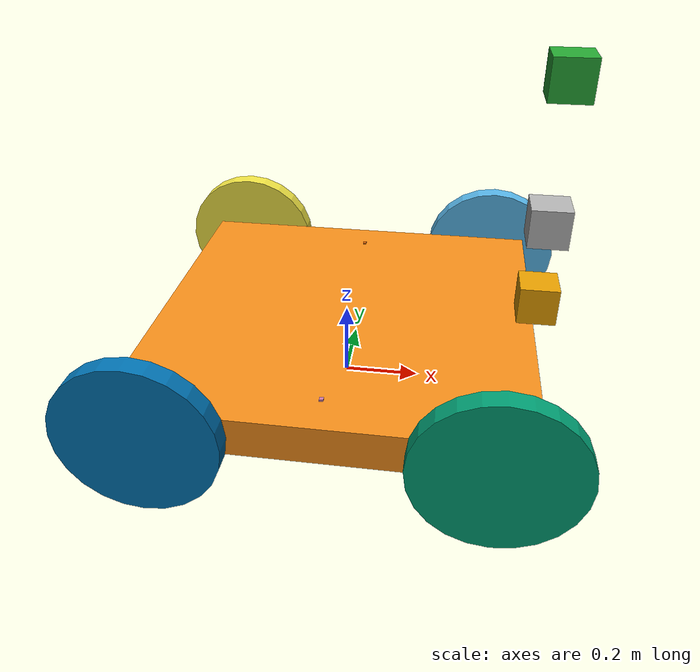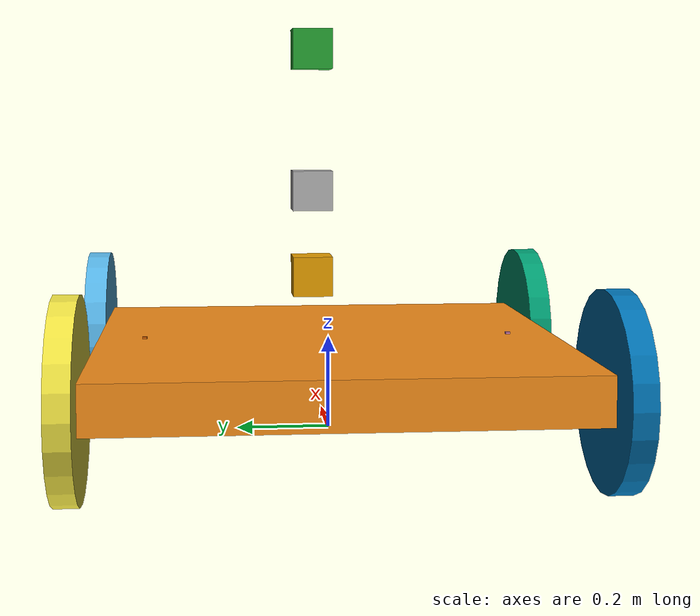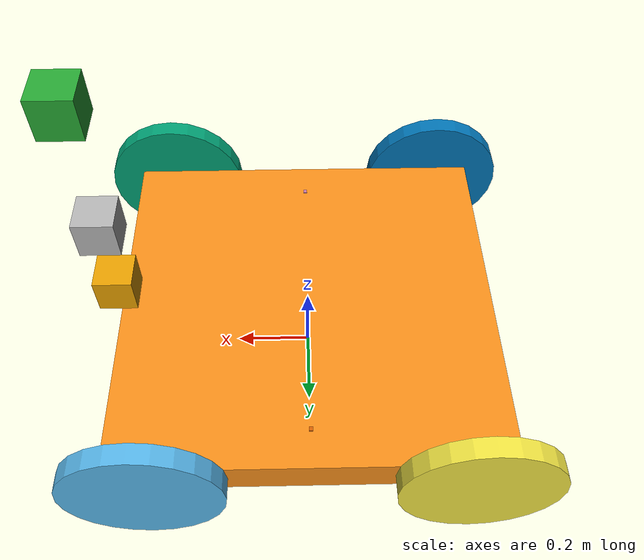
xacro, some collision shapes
<?xml version='1.0'?>

<robot name="FOURWHEElBOT" xmlns:xacro="http://www.ros.org/wiki/xacro">

<xacro:include filename="$(find mybot)/urdf/mybot.gazebo" />

<!-- CHASSIS -->

  <link name="chassis">
    <pose>0 0 0.1 0 0 0</pose>
    <inertial>
      <mass value="15.0"/>
      <origin xyz="0 0 0.15" rpy=" 0 0 0"/>
      <inertia
          ixx="0.09" ixy="0" ixz="0"
          iyy="0.09" iyz="0"
          izz="0.09" />
    </inertial>
    <collision name='collision'>
     <geometry>
        <box size="1.0 1.0 .1"/>
      </geometry>
    </collision>
    <visual name='chassis_visual'>
      <origin xyz="0 0 0.15" rpy=" 0 0 0"/>
      <geometry>
        <box size="1.0 1.0 .1"/>
      </geometry>
    </visual>
  </link>

<!-- WHEEL LINKS -->

  <link name="left_wheel">
    <collision name="collision">
      <origin xyz="0 0 0" rpy="0 1.5707 1.5707"/>
      <geometry>
        <cylinder radius="0.2" length="0.05"/>
      </geometry>
    </collision>
    <visual name="left_wheel_visual">
      <origin xyz="0 0 0" rpy="0 1.5707 1.5707"/>
      <geometry>
        <cylinder radius="0.2" length="0.05"/>
      </geometry>
    </visual>
    <inertial>
      <origin xyz="0 0 0" rpy="0 1.5707 1.5707"/>
      <mass value="5"/>
      <cylinder_inertia m="5" r="0.2" h="0.05"/>
      <inertia
        ixx="0.051" ixy="0.0" ixz="0.0"
        iyy="0.051" iyz="0.0"
        izz="0.1"/>
    </inertial>
  </link>

  <link name="right_wheel">
    <collision name="collision">
      <origin xyz="0 0 0" rpy="0 1.5707 1.5707"/>
      <geometry>
        <cylinder radius="0.2" length="0.05"/>
      </geometry>
    </collision>
    <visual name="right_wheel_visual">
      <origin xyz="0 0 0" rpy="0 1.5707 1.5707"/>
      <geometry>
        <cylinder radius="0.2" length="0.05"/>
      </geometry>
    </visual>
    <inertial>
      <origin xyz="0 0 0" rpy="0 1.5707 1.5707"/>
      <mass value="5"/>
      <cylinder_inertia m="5" r="0.2" h="0.05"/>
      <inertia
        ixx="0.051" ixy="0.0" ixz="0.0"
        iyy="0.051" iyz="0.0"
        izz="0.1"/>
    </inertial>
  </link>

  <link name="left_back_wheel">
    <collision name="collision">
      <origin xyz="0 0 0" rpy="0 1.5707 1.5707"/>
      <geometry>
        <cylinder radius="0.2" length="0.05"/>
      </geometry>
    </collision>
    <visual name="left_wheel_back_visual">
      <origin xyz="0 0 0" rpy="0 1.5707 1.5707"/>
      <geometry>
        <cylinder radius="0.2" length="0.05"/>
      </geometry>
    </visual>
    <inertial>
      <origin xyz="0 0 0" rpy="0 1.5707 1.5707"/>
      <mass value="5"/>
      <cylinder_inertia m="5" r="0.2" h="0.05"/>
      <inertia
        ixx="0.051" ixy="0.0" ixz="0.0"
        iyy="0.051" iyz="0.0"
        izz="0.1"/>
    </inertial>
  </link>

  <link name="right_back_wheel">
    <collision name="collision">
      <origin xyz="0 0 0" rpy="0 1.5707 1.5707"/>
      <geometry>
        <cylinder radius="0.2" length="0.05"/>
      </geometry>
    </collision>
    <visual name="right_wheel_back_visual">
      <origin xyz="0 0 0" rpy="0 1.5707 1.5707"/>
      <geometry>
        <cylinder radius="0.2" length="0.05"/>
      </geometry>
    </visual>
    <inertial>
      <origin xyz="0 0 0" rpy="0 1.5707 1.5707"/>
      <mass value="5"/>
      <cylinder_inertia m="5" r="0.2" h="0.05"/>
      <inertia
        ixx="0.051" ixy="0.0" ixz="0.0"
        iyy="0.051" iyz="0.0"
        izz="0.1"/>
    </inertial>
  </link>

<!-- WHEEL JOINTS -->

  <joint type="continuous" name="left_wheel_hinge">
    <origin xyz="0.4 0.525 0.15" rpy="0 0 0"/>
    <child link="left_wheel"/>
    <parent link="chassis"/>
    <axis xyz="0 1 0" rpy="0 0 0"/>
    <limit effort="100" velocity="100"/>
    <joint_properties damping="0.0" friction="1.0"/>
  </joint>

  <joint type="continuous" name="right_wheel_hinge">
    <origin xyz="0.4 -0.525 0.15" rpy="0 0 0"/>
    <child link="right_wheel"/>
    <parent link="chassis"/>
    <axis xyz="0 1 0" rpy="0 0 0"/>
    <limit effort="100" velocity="100"/>
    <joint_properties damping="0.0" friction="1.0"/>
  </joint>

 <joint type="continuous" name="left_wheel_back_hinge">
    <origin xyz="-0.4 0.525 0.15" rpy="0 0 0"/>
    <child link="left_back_wheel"/>
    <parent link="chassis"/>
    <axis xyz="0 1 0" rpy="0 0 0"/>
    <limit effort="100" velocity="100"/>
    <joint_properties damping="0.0" friction="1.0"/>
  </joint>

  <joint type="continuous" name="right_wheel_back_hinge">
    <origin xyz="-0.4 -0.525 0.15" rpy="0 0 0"/>
    <child link="right_back_wheel"/>
    <parent link="chassis"/>
    <axis xyz="0 1 0" rpy="0 0 0"/>
    <limit effort="100" velocity="100"/>
    <joint_properties damping="0.0" friction="1.0"/>
  </joint>

<!-- ULTRASONIC SENSOR -->

  <link name="us_left">
    <collision>
      <origin xyz="0 0 0" rpy="0 0 0"/>
      <geometry>
        <box size="0.01 0.01 0.01"/>
      </geometry>
    </collision>
    <visual>
      <origin xyz="0 0 0" rpy="0 0 0"/>
      <geometry>
        <box size="0.01 0.01 0.01"/>
      </geometry>
    </visual>
    <inertial>
      <mass value="1e-5" />
      <origin xyz="0 0 0" rpy="0 0 0"/>
      <inertia ixx="1e-6" ixy="0" ixz="0"
               iyy="1e-6" iyz="0"
               izz="1e-6" />
    </inertial>
  </link>

  <link name="us_right">
    <collision>
      <origin xyz="0 0 0" rpy="0 0 0"/>
      <geometry>
        <box size="0.01 0.01 0.01"/>
      </geometry>
    </collision>
    <visual>
      <origin xyz="0 0 0" rpy="0 0 0"/>
      <geometry>
        <box size="0.01 0.01 0.01"/>
      </geometry>
    </visual>
    <inertial>
      <mass value="1e-5" />
      <origin xyz="0 0 0" rpy="0 0 0"/>
      <inertia ixx="1e-6" ixy="0" ixz="0"
               iyy="1e-6" iyz="0"
               izz="1e-6" />
    </inertial>
  </link>

<!-- ULTRASONIC SENSOR JOINTS -->

  <joint name="us_left_joint" type="fixed">
    <axis xyz="0 1 0" />
    <origin rpy="0 0 1.57" xyz="0.0 0.4 0.2" />
    <parent link="chassis"/>
    <child link="us_left"/>
  </joint>

  <joint name="us_right_joint" type="fixed">
    <axis xyz="0 1 0" />
    <origin rpy="0 0 -1.57" xyz="0.0 -0.4 0.2" />
    <parent link="chassis"/>
    <child link="us_right"/>
  </joint>

<!-- HOKUYO LASER -->

  <link name="hokuyo">
    <collision>
      <origin xyz="0 0 0.125" rpy="0 0 0"/>
      <geometry>
        <box size="0.1 0.1 0.1"/>
      </geometry>
    </collision>

    <visual>
      <origin xyz="0 0 0.125" rpy="0 0 0"/>
        <geometry>
          <mesh filename="package://mybot/meshes/hokuyo.dae"/>
        </geometry>
    </visual>

    <inertial>
      <mass value="1e-5" />
      <origin xyz="0 0 0.125" rpy="0 0 0"/>
      <inertia ixx="1e-6" ixy="0" ixz="0" iyy="1e-6" iyz="0" izz="1e-6" />
      </inertial>
  </link>

<!-- HOKUYO LASER JOINT -->

  <joint name="hokuyo_joint" type="fixed">
    <axis xyz="0 1 0" />
    <origin xyz=".5 0 .37" rpy="0 0 0"/>
    <parent link="chassis"/>
    <child link="hokuyo"/>
  </joint>

<!-- DEPTH CAMERA -->

  <link name="camera_depth">
    <collision name="collision_camera_depth">
      <origin xyz="0 0 0.028575" rpy="0 0 0" />
      <geometry>
        <box size="0.1 0.1 0.1" />
      </geometry>
    </collision>
    <visual name="camera_depth_visual">
      <origin xyz="0 0 0.028575" rpy="0 0 0" />
      <geometry>
        <box size="0.1 0.1 0.1" />
      </geometry>
    </visual>
    <inertial>
      <mass value="0.1" />
      <origin xyz="0 0 0.0001" rpy="0 0 0"/>
      <inertia ixx="0.0001" ixy="0.0" ixz="0.0"
               iyy="0.0001" iyz="0.0"
               izz="0.0001" />
    </inertial>
  </link>

<!-- DEPTH CAMERA JOINT -->

  <joint name="kinect_joint" type="fixed">
    <origin xyz="0.5 0 0.25" rpy="0 0 0" />
    <child link="camera_depth" />
    <parent link="chassis" />
  </joint>

<!-- CAMERA -->

  <link name="camera">
    <collision>
      <origin xyz="0.0 0 0.3" rpy="0 0 0"/>
      <geometry>
        <box size="0.1 0.1 0.1"/>
      </geometry>
    </collision>
    <visual>
      <origin xyz="0.0 0 0.3" rpy="0 0 0"/>
      <geometry>
        <box size="0.1, 0.1, 0.1"/>
      </geometry>
      <material name="green"/>
    </visual>
    <inertial>
      <mass value="0.1" />
      <origin xyz="0.0 0 0.3" rpy="0 0 0"/>
      <box_inertia m="0.1" x="0.1" y="0.1" z="0.1" />
      <inertia ixx="1e-6" ixy="0" ixz="0"
               iyy="1e-6" iyz="0"
               izz="1e-6" />
      </inertial>
  </link>

<!-- CAMERA JOINT -->

  <joint name="camera_joint" type="fixed">
    <axis xyz="0 1 0" />
    <origin xyz=".5 0 0.55" rpy="0 0 0"/>
    <parent link="chassis"/>
    <child link="camera"/>
  </joint>

</robot>
